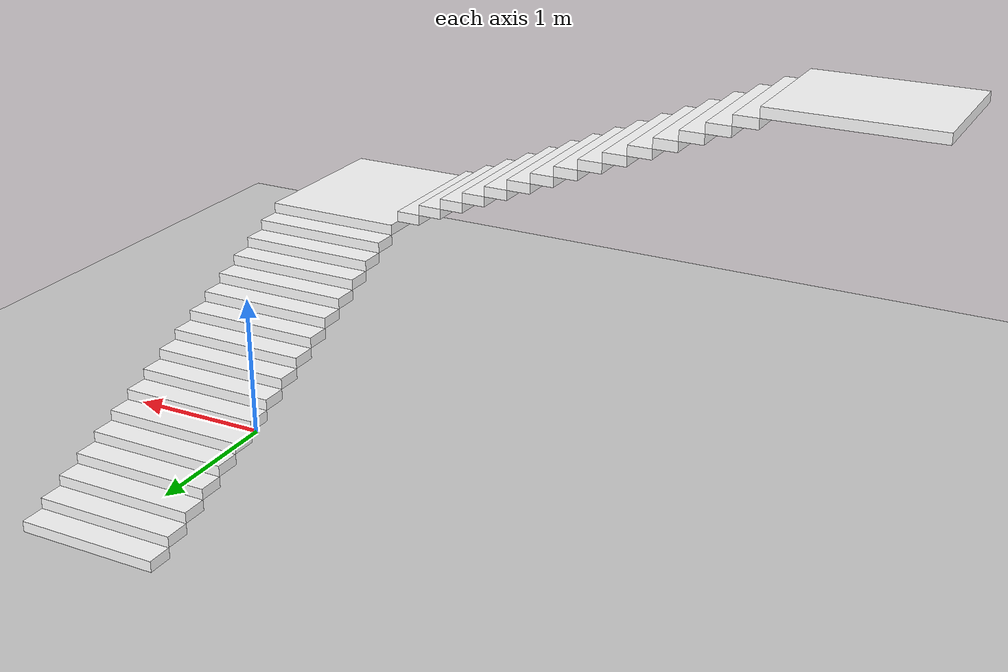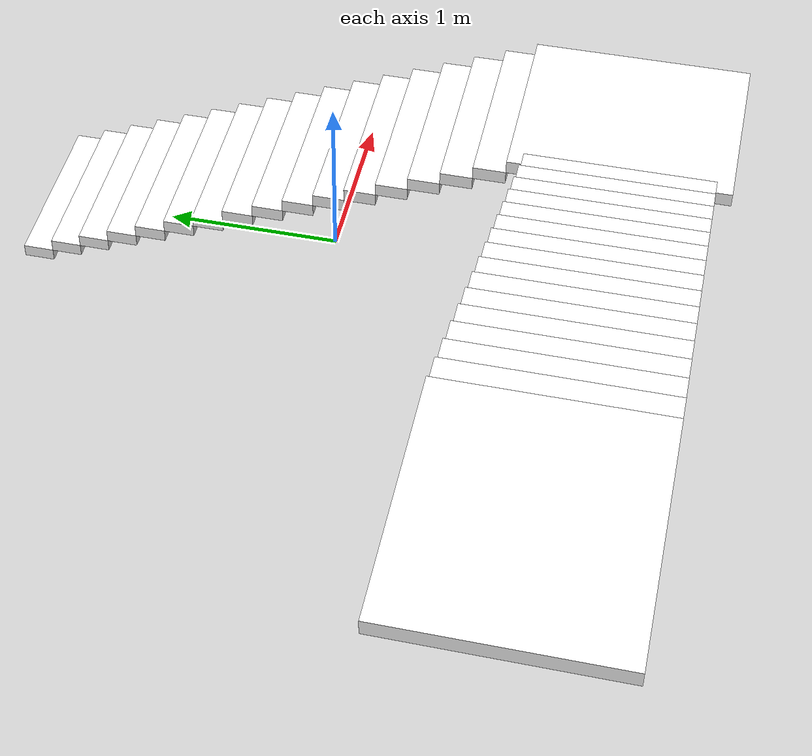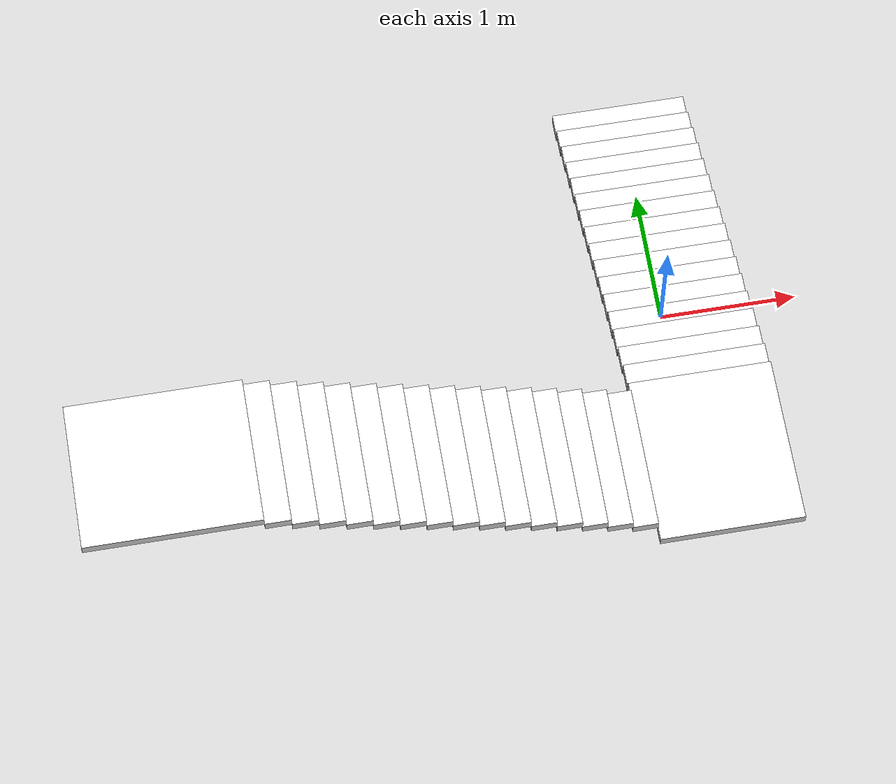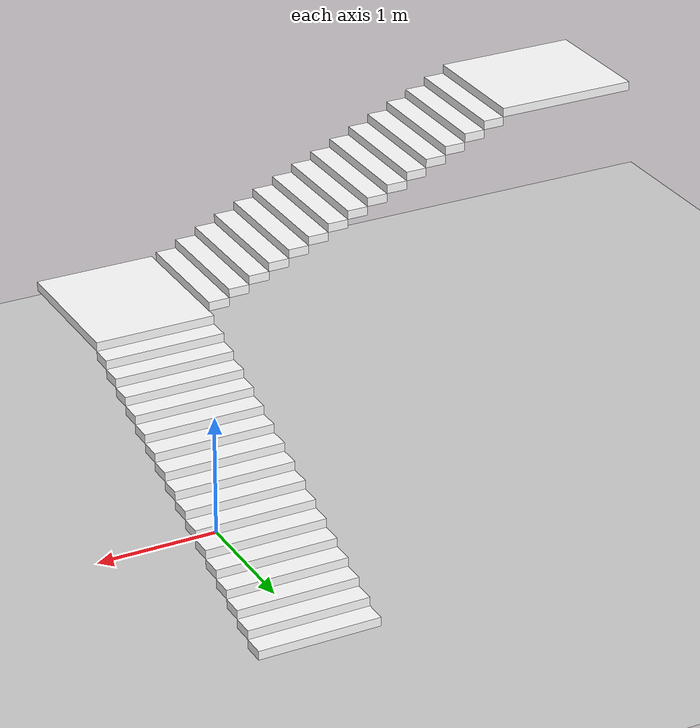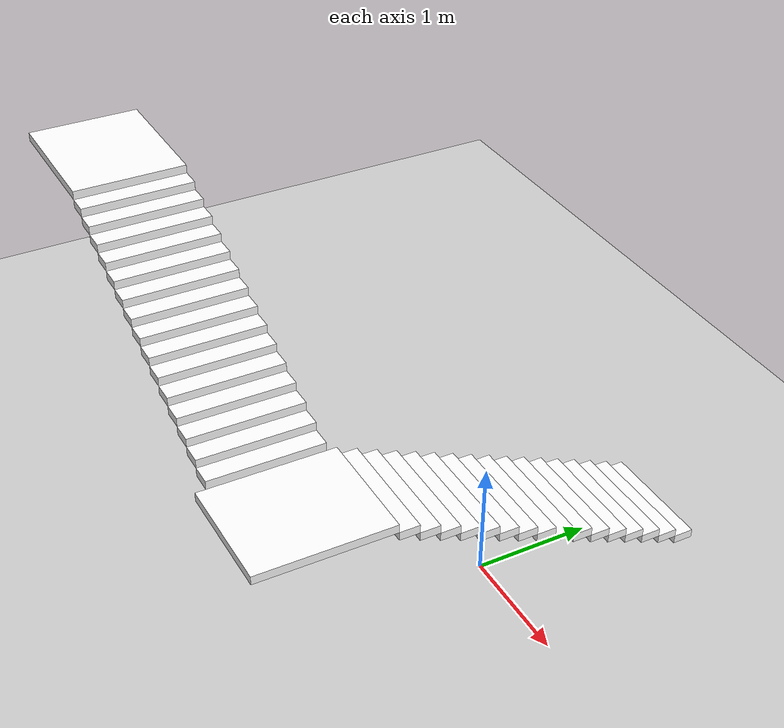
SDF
<?xml version="1.0"?>
<sdf version="1.6">
    <world name="default">
        <gui>
            <plugin name="keyboard" filename="libKeyboardGUIPlugin.so" />
        </gui>

        <include>
            <uri>model://sun</uri>
        </include>

        <include>
            <uri>model://ground_plane</uri>
        </include>

        <model name='stairs_very_simple'>
            <pose frame=''>0 0 0 0 0 0</pose>
            <link name='Stairs_3'>
                <visual name='Stairs_3_Visual_0'>
                    <pose frame=''>0 1.6625 0.0375 0 -0 0</pose>
                    <geometry>
                        <box>
                            <size>1 0.175 0.075</size>
                        </box>
                    </geometry>
                    <material>
                        <script>
                            <uri>model://stairs_textured/materials/scripts</uri>
                            <uri>model://stairs_textured/materials/textures</uri>
                            <name>graniteMat/Diffuse</name>
                        </script>
                        <ambient>1 1 1 1</ambient>
                    </material>
                    <meta>
                        <layer>0</layer>
                    </meta>
                </visual>
                <collision name='Stairs_3_Collision_0'>
                    <geometry>
                        <box>
                            <size>1 0.175 0.075</size>
                        </box>
                    </geometry>
                    <pose frame=''>0 1.6625 0.0375 0 -0 0</pose>
                </collision>
                <visual name='Stairs_3_Visual_1'>
                    <pose frame=''>0 1.4875 0.1125 0 -0 0</pose>
                    <geometry>
                        <box>
                            <size>1 0.175 0.075</size>
                        </box>
                    </geometry>
                    <material>
                        <script>
                            <uri>model://stairs_textured/materials/scripts</uri>
                            <uri>model://stairs_textured/materials/textures</uri>
                            <name>graniteMat/Diffuse</name>
                        </script>
                        <ambient>1 1 1 1</ambient>
                    </material>
                    <meta>
                        <layer>0</layer>
                    </meta>
                </visual>
                <collision name='Stairs_3_Collision_1'>
                    <geometry>
                        <box>
                            <size>1 0.175 0.075</size>
                        </box>
                    </geometry>
                    <pose frame=''>0 1.4875 0.1125 0 -0 0</pose>
                </collision>
                <visual name='Stairs_3_Visual_2'>
                    <pose frame=''>0 1.3125 0.1875 0 -0 0</pose>
                    <geometry>
                        <box>
                            <size>1 0.175 0.075</size>
                        </box>
                    </geometry>
                    <material>
                        <script>
                            <uri>model://stairs_textured/materials/scripts</uri>
                            <uri>model://stairs_textured/materials/textures</uri>
                            <name>graniteMat/Diffuse</name>
                        </script>
                        <ambient>1 1 1 1</ambient>
                    </material>
                    <meta>
                        <layer>0</layer>
                    </meta>
                </visual>
                <collision name='Stairs_3_Collision_2'>
                    <geometry>
                        <box>
                            <size>1 0.175 0.075</size>
                        </box>
                    </geometry>
                    <pose frame=''>0 1.3125 0.1875 0 -0 0</pose>
                </collision>
                <visual name='Stairs_3_Visual_3'>
                    <pose frame=''>0 1.1375 0.2625 0 -0 0</pose>
                    <geometry>
                        <box>
                            <size>1 0.175 0.075</size>
                        </box>
                    </geometry>
                    <material>
                        <script>
                            <uri>model://stairs_textured/materials/scripts</uri>
                            <uri>model://stairs_textured/materials/textures</uri>
                            <name>graniteMat/Diffuse</name>
                        </script>
                        <ambient>1 1 1 1</ambient>
                    </material>
                    <meta>
                        <layer>0</layer>
                    </meta>
                </visual>
                <collision name='Stairs_3_Collision_3'>
                    <geometry>
                        <box>
                            <size>1 0.175 0.075</size>
                        </box>
                    </geometry>
                    <pose frame=''>0 1.1375 0.2625 0 -0 0</pose>
                </collision>
                <visual name='Stairs_3_Visual_4'>
                    <pose frame=''>0 0.9625 0.3375 0 -0 0</pose>
                    <geometry>
                        <box>
                            <size>1 0.175 0.075</size>
                        </box>
                    </geometry>
                    <material>
                        <script>
                            <uri>model://stairs_textured/materials/scripts</uri>
                            <uri>model://stairs_textured/materials/textures</uri>
                            <name>graniteMat/Diffuse</name>
                        </script>
                        <ambient>1 1 1 1</ambient>
                    </material>
                    <meta>
                        <layer>0</layer>
                    </meta>
                </visual>
                <collision name='Stairs_3_Collision_4'>
                    <geometry>
                        <box>
                            <size>1 0.175 0.075</size>
                        </box>
                    </geometry>
                    <pose frame=''>0 0.9625 0.3375 0 -0 0</pose>
                </collision>
                <visual name='Stairs_3_Visual_5'>
                    <pose frame=''>0 0.7875 0.4125 0 -0 0</pose>
                    <geometry>
                        <box>
                            <size>1 0.175 0.075</size>
                        </box>
                    </geometry>
                    <material>
                        <script>
                            <uri>model://stairs_textured/materials/scripts</uri>
                            <uri>model://stairs_textured/materials/textures</uri>
                            <name>graniteMat/Diffuse</name>
                        </script>
                        <ambient>1 1 1 1</ambient>
                    </material>
                    <meta>
                        <layer>0</layer>
                    </meta>
                </visual>
                <collision name='Stairs_3_Collision_5'>
                    <geometry>
                        <box>
                            <size>1 0.175 0.075</size>
                        </box>
                    </geometry>
                    <pose frame=''>0 0.7875 0.4125 0 -0 0</pose>
                </collision>
                <visual name='Stairs_3_Visual_6'>
                    <pose frame=''>0 0.6125 0.4875 0 -0 0</pose>
                    <geometry>
                        <box>
                            <size>1 0.175 0.075</size>
                        </box>
                    </geometry>
                    <material>
                        <script>
                            <uri>model://stairs_textured/materials/scripts</uri>
                            <uri>model://stairs_textured/materials/textures</uri>
                            <name>graniteMat/Diffuse</name>
                        </script>
                        <ambient>1 1 1 1</ambient>
                    </material>
                    <meta>
                        <layer>0</layer>
                    </meta>
                </visual>
                <collision name='Stairs_3_Collision_6'>
                    <geometry>
                        <box>
                            <size>1 0.175 0.075</size>
                        </box>
                    </geometry>
                    <pose frame=''>0 0.6125 0.4875 0 -0 0</pose>
                </collision>
                <visual name='Stairs_3_Visual_7'>
                    <pose frame=''>0 0.4375 0.5625 0 -0 0</pose>
                    <geometry>
                        <box>
                            <size>1 0.175 0.075</size>
                        </box>
                    </geometry>
                    <material>
                        <script>
                            <uri>model://stairs_textured/materials/scripts</uri>
                            <uri>model://stairs_textured/materials/textures</uri>
                            <name>graniteMat/Diffuse</name>
                        </script>
                        <ambient>1 1 1 1</ambient>
                    </material>
                    <meta>
                        <layer>0</layer>
                    </meta>
                </visual>
                <collision name='Stairs_3_Collision_7'>
                    <geometry>
                        <box>
                            <size>1 0.175 0.075</size>
                        </box>
                    </geometry>
                    <pose frame=''>0 0.4375 0.5625 0 -0 0</pose>
                </collision>
                <visual name='Stairs_3_Visual_8'>
                    <pose frame=''>0 0.2625 0.6375 0 -0 0</pose>
                    <geometry>
                        <box>
                            <size>1 0.175 0.075</size>
                        </box>
                    </geometry>
                    <material>
                        <script>
                            <uri>model://stairs_textured/materials/scripts</uri>
                            <uri>model://stairs_textured/materials/textures</uri>
                            <name>graniteMat/Diffuse</name>
                        </script>
                        <ambient>1 1 1 1</ambient>
                    </material>
                    <meta>
                        <layer>0</layer>
                    </meta>
                </visual>
                <collision name='Stairs_3_Collision_8'>
                    <geometry>
                        <box>
                            <size>1 0.175 0.075</size>
                        </box>
                    </geometry>
                    <pose frame=''>0 0.2625 0.6375 0 -0 0</pose>
                </collision>
                <visual name='Stairs_3_Visual_9'>
                    <pose frame=''>0 0.0875 0.7125 0 -0 0</pose>
                    <geometry>
                        <box>
                            <size>1 0.175 0.075</size>
                        </box>
                    </geometry>
                    <material>
                        <script>
                            <uri>model://stairs_textured/materials/scripts</uri>
                            <uri>model://stairs_textured/materials/textures</uri>
                            <name>graniteMat/Diffuse</name>
                        </script>
                        <ambient>1 1 1 1</ambient>
                    </material>
                    <meta>
                        <layer>0</layer>
                    </meta>
                </visual>
                <collision name='Stairs_3_Collision_9'>
                    <geometry>
                        <box>
                            <size>1 0.175 0.075</size>
                        </box>
                    </geometry>
                    <pose frame=''>0 0.0875 0.7125 0 -0 0</pose>
                </collision>
                <visual name='Stairs_3_Visual_10'>
                    <pose frame=''>0 -0.0875 0.7875 0 -0 0</pose>
                    <geometry>
                        <box>
                            <size>1 0.175 0.075</size>
                        </box>
                    </geometry>
                    <material>
                        <script>
                            <uri>model://stairs_textured/materials/scripts</uri>
                            <uri>model://stairs_textured/materials/textures</uri>
                            <name>graniteMat/Diffuse</name>
                        </script>
                        <ambient>1 1 1 1</ambient>
                    </material>
                    <meta>
                        <layer>0</layer>
                    </meta>
                </visual>
                <collision name='Stairs_3_Collision_10'>
                    <geometry>
                        <box>
                            <size>1 0.175 0.075</size>
                        </box>
                    </geometry>
                    <pose frame=''>0 -0.0875 0.7875 0 -0 0</pose>
                </collision>
                <visual name='Stairs_3_Visual_11'>
                    <pose frame=''>0 -0.2625 0.8625 0 -0 0</pose>
                    <geometry>
                        <box>
                            <size>1 0.175 0.075</size>
                        </box>
                    </geometry>
                    <material>
                        <script>
                            <uri>model://stairs_textured/materials/scripts</uri>
                            <uri>model://stairs_textured/materials/textures</uri>
                            <name>graniteMat/Diffuse</name>
                        </script>
                        <ambient>1 1 1 1</ambient>
                    </material>
                    <meta>
                        <layer>0</layer>
                    </meta>
                </visual>
                <collision name='Stairs_3_Collision_11'>
                    <geometry>
                        <box>
                            <size>1 0.175 0.075</size>
                        </box>
                    </geometry>
                    <pose frame=''>0 -0.2625 0.8625 0 -0 0</pose>
                </collision>
                <visual name='Stairs_3_Visual_12'>
                    <pose frame=''>0 -0.4375 0.9375 0 -0 0</pose>
                    <geometry>
                        <box>
                            <size>1 0.175 0.075</size>
                        </box>
                    </geometry>
                    <material>
                        <script>
                            <uri>model://stairs_textured/materials/scripts</uri>
                            <uri>model://stairs_textured/materials/textures</uri>
                            <name>graniteMat/Diffuse</name>
                        </script>
                        <ambient>1 1 1 1</ambient>
                    </material>
                    <meta>
                        <layer>0</layer>
                    </meta>
                </visual>
                <collision name='Stairs_3_Collision_12'>
                    <geometry>
                        <box>
                            <size>1 0.175 0.075</size>
                        </box>
                    </geometry>
                    <pose frame=''>0 -0.4375 0.9375 0 -0 0</pose>
                </collision>
                <visual name='Stairs_3_Visual_13'>
                    <pose frame=''>0 -0.6125 1.0125 0 -0 0</pose>
                    <geometry>
                        <box>
                            <size>1 0.175 0.075</size>
                        </box>
                    </geometry>
                    <material>
                        <script>
                            <uri>model://stairs_textured/materials/scripts</uri>
                            <uri>model://stairs_textured/materials/textures</uri>
                            <name>graniteMat/Diffuse</name>
                        </script>
                        <ambient>1 1 1 1</ambient>
                    </material>
                    <meta>
                        <layer>0</layer>
                    </meta>
                </visual>
                <collision name='Stairs_3_Collision_13'>
                    <geometry>
                        <box>
                            <size>1 0.175 0.075</size>
                        </box>
                    </geometry>
                    <pose frame=''>0 -0.6125 1.0125 0 -0 0</pose>
                </collision>
                <visual name='Stairs_3_Visual_14'>
                    <pose frame=''>0 -0.7875 1.0875 0 -0 0</pose>
                    <geometry>
                        <box>
                            <size>1 0.175 0.075</size>
                        </box>
                    </geometry>
                    <material>
                        <script>
                            <uri>model://stairs_textured/materials/scripts</uri>
                            <uri>model://stairs_textured/materials/textures</uri>
                            <name>graniteMat/Diffuse</name>
                        </script>
                        <ambient>1 1 1 1</ambient>
                    </material>
                    <meta>
                        <layer>0</layer>
                    </meta>
                </visual>
                <collision name='Stairs_3_Collision_14'>
                    <geometry>
                        <box>
                            <size>1 0.175 0.075</size>
                        </box>
                    </geometry>
                    <pose frame=''>0 -0.7875 1.0875 0 -0 0</pose>
                </collision>
                <visual name='Stairs_3_Visual_15'>
                    <pose frame=''>0 -0.9625 1.1625 0 -0 0</pose>
                    <geometry>
                        <box>
                            <size>1 0.175 0.075</size>
                        </box>
                    </geometry>
                    <material>
                        <script>
                            <uri>model://stairs_textured/materials/scripts</uri>
                            <uri>model://stairs_textured/materials/textures</uri>
                            <name>graniteMat/Diffuse</name>
                        </script>
                        <ambient>1 1 1 1</ambient>
                    </material>
                    <meta>
                        <layer>0</layer>
                    </meta>
                </visual>
                <collision name='Stairs_3_Collision_15'>
                    <geometry>
                        <box>
                            <size>1 0.175 0.075</size>
                        </box>
                    </geometry>
                    <pose frame=''>0 -0.9625 1.1625 0 -0 0</pose>
                </collision>
                <visual name='Stairs_3_Visual_16'>
                    <pose frame=''>0 -1.6375 1.2375 0 -0 0</pose>
                    <geometry>
                        <box>
                            <size>1 1.175 0.075</size>
                        </box>
                    </geometry>
                    <material>
                        <script>
                            <uri>model://stairs_textured/materials/scripts</uri>
                            <uri>model://stairs_textured/materials/textures</uri>
                            <name>graniteMat/Diffuse</name>
                        </script>
                        <ambient>1 1 1 1</ambient>
                    </material>
                    <meta>
                        <layer>0</layer>
                    </meta>
                </visual>
                <collision name='Stairs_3_Collision_16'>
                    <geometry>
                        <box>
                            <size>1 1.175 0.075</size>
                        </box>
                    </geometry>
                    <pose frame=''>0 -1.6375 1.2375 0 -0 0</pose>
                </collision>

                <visual name='Stairs_3_Visual_17'>
                    <pose frame=''>-0.5875 -1.6375 1.3125 0 -0 0</pose>
                    <geometry>
                        <box>
                            <size>0.175 1 0.075</size>
                        </box>
                    </geometry>
                    <material>
                        <script>
                            <uri>model://stairs_textured/materials/scripts</uri>
                            <uri>model://stairs_textured/materials/textures</uri>
                            <name>graniteMat/Diffuse</name>
                        </script>
                        <ambient>1 1 1 1</ambient>
                    </material>
                    <meta>
                        <layer>0</layer>
                    </meta>
                </visual>
                <collision name='Stairs_3_Collision_17'>
                    <geometry>
                        <box>
                            <size>0.175 1 0.075</size>
                        </box>
                    </geometry>
                    <pose frame=''>-0.5875 -1.6375 1.3125 0 -0 0</pose>
                </collision>

                <visual name='Stairs_3_Visual_18'>
                    <pose frame=''>-0.7625 -1.6375 1.3875 0 -0 0</pose>
                    <geometry>
                        <box>
                            <size>0.175 1 0.075</size>
                        </box>
                    </geometry>
                    <material>
                        <script>
                            <uri>model://stairs_textured/materials/scripts</uri>
                            <uri>model://stairs_textured/materials/textures</uri>
                            <name>graniteMat/Diffuse</name>
                        </script>
                        <ambient>1 1 1 1</ambient>
                    </material>
                    <meta>
                        <layer>0</layer>
                    </meta>
                </visual>
                <collision name='Stairs_3_Collision_18'>
                    <geometry>
                        <box>
                            <size>0.175 1 0.075</size>
                        </box>
                    </geometry>
                    <pose frame=''>-0.7625 -1.6375 1.3875 0 -0 0</pose>
                </collision>

                <visual name='Stairs_3_Visual_19'>
                    <pose frame=''>-0.9375 -1.6375 1.4625 0 -0 0</pose>
                    <geometry>
                        <box>
                            <size>0.175 1 0.075</size>
                        </box>
                    </geometry>
                    <material>
                        <script>
                            <uri>model://stairs_textured/materials/scripts</uri>
                            <uri>model://stairs_textured/materials/textures</uri>
                            <name>graniteMat/Diffuse</name>
                        </script>
                        <ambient>1 1 1 1</ambient>
                    </material>
                    <meta>
                        <layer>0</layer>
                    </meta>
                </visual>
                <collision name='Stairs_3_Collision_19'>
                    <geometry>
                        <box>
                            <size>0.175 1 0.075</size>
                        </box>
                    </geometry>
                    <pose frame=''>-0.9375 -1.6375 1.4625 0 -0 0</pose>
                </collision>

                <visual name='Stairs_3_Visual_20'>
                    <pose frame=''>-1.1125 -1.6375 1.5375 0 -0 0</pose>
                    <geometry>
                        <box>
                            <size>0.175 1 0.075</size>
                        </box>
                    </geometry>
                    <material>
                        <script>
                            <uri>model://stairs_textured/materials/scripts</uri>
                            <uri>model://stairs_textured/materials/textures</uri>
                            <name>graniteMat/Diffuse</name>
                        </script>
                        <ambient>1 1 1 1</ambient>
                    </material>
                    <meta>
                        <layer>0</layer>
                    </meta>
                </visual>
                <collision name='Stairs_3_Collision_20'>
                    <geometry>
                        <box>
                            <size>0.175 1 0.075</size>
                        </box>
                    </geometry>
                    <pose frame=''>-1.1125 -1.6375 1.5375 0 -0 0</pose>
                </collision>

                <visual name='Stairs_3_Visual_21'>
                    <pose frame=''>-1.2875 -1.6375 1.6125 0 -0 0</pose>
                    <geometry>
                        <box>
                            <size>0.175 1 0.075</size>
                        </box>
                    </geometry>
                    <material>
                        <script>
                            <uri>model://stairs_textured/materials/scripts</uri>
                            <uri>model://stairs_textured/materials/textures</uri>
                            <name>graniteMat/Diffuse</name>
                        </script>
                        <ambient>1 1 1 1</ambient>
                    </material>
                    <meta>
                        <layer>0</layer>
                    </meta>
                </visual>
                <collision name='Stairs_3_Collision_21'>
                    <geometry>
                        <box>
                            <size>0.175 1 0.075</size>
                        </box>
                    </geometry>
                    <pose frame=''>-1.2875 -1.6375 1.6125 0 -0 0</pose>
                </collision>

                <visual name='Stairs_3_Visual_22'>
                    <pose frame=''>-1.4625 -1.6375 1.6875 0 -0 0</pose>
                    <geometry>
                        <box>
                            <size>0.175 1 0.075</size>
                        </box>
                    </geometry>
                    <material>
                        <script>
                            <uri>model://stairs_textured/materials/scripts</uri>
                            <uri>model://stairs_textured/materials/textures</uri>
                            <name>graniteMat/Diffuse</name>
                        </script>
                        <ambient>1 1 1 1</ambient>
                    </material>
                    <meta>
                        <layer>0</layer>
                    </meta>
                </visual>
                <collision name='Stairs_3_Collision_22'>
                    <geometry>
                        <box>
                            <size>0.175 1 0.075</size>
                        </box>
                    </geometry>
                    <pose frame=''>-1.4625 -1.6375 1.6875 0 -0 0</pose>
                </collision>

                <visual name='Stairs_3_Visual_23'>
                    <pose frame=''>-1.6375 -1.6375 1.7625 0 -0 0</pose>
                    <geometry>
                        <box>
                            <size>0.175 1 0.075</size>
                        </box>
                    </geometry>
                    <material>
                        <script>
                            <uri>model://stairs_textured/materials/scripts</uri>
                            <uri>model://stairs_textured/materials/textures</uri>
                            <name>graniteMat/Diffuse</name>
                        </script>
                        <ambient>1 1 1 1</ambient>
                    </material>
                    <meta>
                        <layer>0</layer>
                    </meta>
                </visual>
                <collision name='Stairs_3_Collision_23'>
                    <geometry>
                        <box>
                            <size>0.175 1 0.075</size>
                        </box>
                    </geometry>
                    <pose frame=''>-1.6375 -1.6375 1.7625 0 -0 0</pose>
                </collision>

                <visual name='Stairs_3_Visual_24'>
                    <pose frame=''>-1.8125 -1.6375 1.8375 0 -0 0</pose>
                    <geometry>
                        <box>
                            <size>0.175 1 0.075</size>
                        </box>
                    </geometry>
                    <material>
                        <script>
                            <uri>model://stairs_textured/materials/scripts</uri>
                            <uri>model://stairs_textured/materials/textures</uri>
                            <name>graniteMat/Diffuse</name>
                        </script>
                        <ambient>1 1 1 1</ambient>
                    </material>
                    <meta>
                        <layer>0</layer>
                    </meta>
                </visual>
                <collision name='Stairs_3_Collision_24'>
                    <geometry>
                        <box>
                            <size>0.175 1 0.075</size>
                        </box>
                    </geometry>
                    <pose frame=''>-1.8125 -1.6375 1.8375 0 -0 0</pose>
                </collision>

                <visual name='Stairs_3_Visual_25'>
                    <pose frame=''>-1.9875 -1.6375 1.9125 0 -0 0</pose>
                    <geometry>
                        <box>
                            <size>0.175 1 0.075</size>
                        </box>
                    </geometry>
                    <material>
                        <script>
                            <uri>model://stairs_textured/materials/scripts</uri>
                            <uri>model://stairs_textured/materials/textures</uri>
                            <name>graniteMat/Diffuse</name>
                        </script>
                        <ambient>1 1 1 1</ambient>
                    </material>
                    <meta>
                        <layer>0</layer>
                    </meta>
                </visual>
                <collision name='Stairs_3_Collision_25'>
                    <geometry>
                        <box>
                            <size>0.175 1 0.075</size>
                        </box>
                    </geometry>
                    <pose frame=''>-1.9875 -1.6375 1.9125 0 -0 0</pose>
                </collision>

                <visual name='Stairs_3_Visual_26'>
                    <pose frame=''>-2.1625 -1.6375 1.9875 0 -0 0</pose>
                    <geometry>
                        <box>
                            <size>0.175 1 0.075</size>
                        </box>
                    </geometry>
                    <material>
                        <script>
                            <uri>model://stairs_textured/materials/scripts</uri>
                            <uri>model://stairs_textured/materials/textures</uri>
                            <name>graniteMat/Diffuse</name>
                        </script>
                        <ambient>1 1 1 1</ambient>
                    </material>
                    <meta>
                        <layer>0</layer>
                    </meta>
                </visual>
                <collision name='Stairs_3_Collision_26'>
                    <geometry>
                        <box>
                            <size>0.175 1 0.075</size>
                        </box>
                    </geometry>
                    <pose frame=''>-2.1625 -1.6375 1.9875 0 -0 0</pose>
                </collision>

                <visual name='Stairs_3_Visual_27'>
                    <pose frame=''>-2.3375 -1.6375 2.0625 0 -0 0</pose>
                    <geometry>
                        <box>
                            <size>0.175 1 0.075</size>
                        </box>
                    </geometry>
                    <material>
                        <script>
                            <uri>model://stairs_textured/materials/scripts</uri>
                            <uri>model://stairs_textured/materials/textures</uri>
                            <name>graniteMat/Diffuse</name>
                        </script>
                        <ambient>1 1 1 1</ambient>
                    </material>
                    <meta>
                        <layer>0</layer>
                    </meta>
                </visual>
                <collision name='Stairs_3_Collision_27'>
                    <geometry>
                        <box>
                            <size>0.175 1 0.075</size>
                        </box>
                    </geometry>
                    <pose frame=''>-2.3375 -1.6375 2.0625 0 -0 0</pose>
                </collision>

                <visual name='Stairs_3_Visual_28'>
                    <pose frame=''>-2.5125 -1.6375 2.1375 0 -0 0</pose>
                    <geometry>
                        <box>
                            <size>0.175 1 0.075</size>
                        </box>
                    </geometry>
                    <material>
                        <script>
                            <uri>model://stairs_textured/materials/scripts</uri>
                            <uri>model://stairs_textured/materials/textures</uri>
                            <name>graniteMat/Diffuse</name>
                        </script>
                        <ambient>1 1 1 1</ambient>
                    </material>
                    <meta>
                        <layer>0</layer>
                    </meta>
                </visual>
                <collision name='Stairs_3_Collision_28'>
                    <geometry>
                        <box>
                            <size>0.175 1 0.075</size>
                        </box>
                    </geometry>
                    <pose frame=''>-2.5125 -1.6375 2.1375 0 -0 0</pose>
                </collision>

                <visual name='Stairs_3_Visual_29'>
                    <pose frame=''>-2.6875 -1.6375 2.2125 0 -0 0</pose>
                    <geometry>
                        <box>
                            <size>0.175 1 0.075</size>
                        </box>
                    </geometry>
                    <material>
                        <script>
                            <uri>model://stairs_textured/materials/scripts</uri>
                            <uri>model://stairs_textured/materials/textures</uri>
                            <name>graniteMat/Diffuse</name>
                        </script>
                        <ambient>1 1 1 1</ambient>
                    </material>
                    <meta>
                        <layer>0</layer>
                    </meta>
                </visual>
                <collision name='Stairs_3_Collision_29'>
                    <geometry>
                        <box>
                            <size>0.175 1 0.075</size>
                        </box>
                    </geometry>
                    <pose frame=''>-2.6875 -1.6375 2.2125 0 -0 0</pose>
                </collision>

                <visual name='Stairs_3_Visual_30'>
                    <pose frame=''>-2.8625 -1.6375 2.2875 0 -0 0</pose>
                    <geometry>
                        <box>
                            <size>0.175 1 0.075</size>
                        </box>
                    </geometry>
                    <material>
                        <script>
                            <uri>model://stairs_textured/materials/scripts</uri>
                            <uri>model://stairs_textured/materials/textures</uri>
                            <name>graniteMat/Diffuse</name>
                        </script>
                        <ambient>1 1 1 1</ambient>
                    </material>
                    <meta>
                        <layer>0</layer>
                    </meta>
                </visual>
                <collision name='Stairs_3_Collision_30'>
                    <geometry>
                        <box>
                            <size>0.175 1 0.075</size>
                        </box>
                    </geometry>
                    <pose frame=''>-2.8625 -1.6375 2.2875 0 -0 0</pose>
                </collision>

                <visual name='Stairs_3_Visual_31'>
                    <pose frame=''>-3.0375 -1.6375 2.3625 0 -0 0</pose>
                    <geometry>
                        <box>
                            <size>0.175 1 0.075</size>
                        </box>
                    </geometry>
                    <material>
                        <script>
                            <uri>model://stairs_textured/materials/scripts</uri>
                            <uri>model://stairs_textured/materials/textures</uri>
                            <name>graniteMat/Diffuse</name>
                        </script>
                        <ambient>1 1 1 1</ambient>
                    </material>
                    <meta>
                        <layer>0</layer>
                    </meta>
                </visual>
                <collision name='Stairs_3_Collision_31'>
                    <geometry>
                        <box>
                            <size>0.175 1 0.075</size>
                        </box>
                    </geometry>
                    <pose frame=''>-3.0375 -1.6375 2.3625 0 -0 0</pose>
                </collision>

                <visual name='Stairs_3_Visual_32'>
                    <pose frame=''>-3.7125 -1.6375 2.4375 0 -0 0</pose>
                    <geometry>
                        <box>
                            <size>1.175 1 0.075</size>
                        </box>
                    </geometry>
                    <material>
                        <script>
                            <uri>model://stairs_textured/materials/scripts</uri>
                            <uri>model://stairs_textured/materials/textures</uri>
                            <name>graniteMat/Diffuse</name>
                        </script>
                        <ambient>1 1 1 1</ambient>
                    </material>
                    <meta>
                        <layer>0</layer>
                    </meta>
                </visual>
                <collision name='Stairs_3_Collision_32'>
                    <geometry>
                        <box>
                            <size>1.175 1 0.075</size>
                        </box>
                    </geometry>
                    <pose frame=''>-3.7125 -1.6375 2.4375 0 -0 0</pose>
                </collision>

            </link>
            <static>1</static>
        </model>

    </world>
</sdf>
